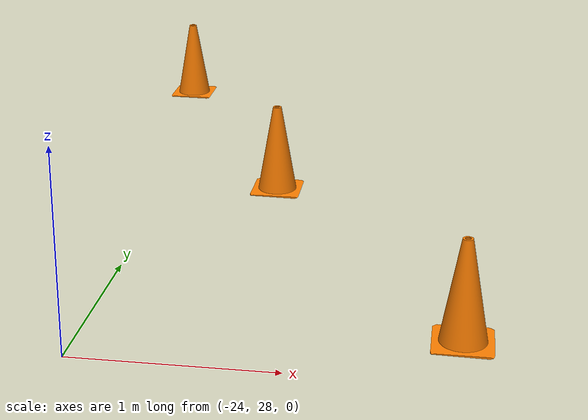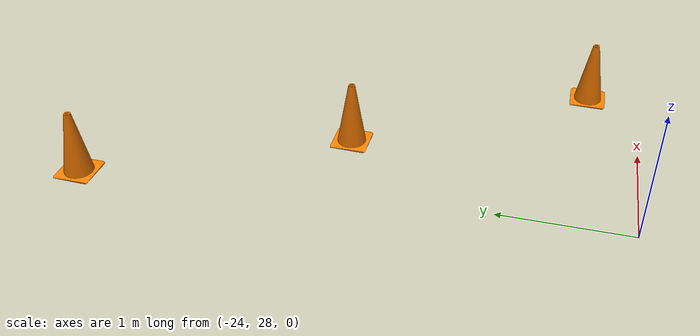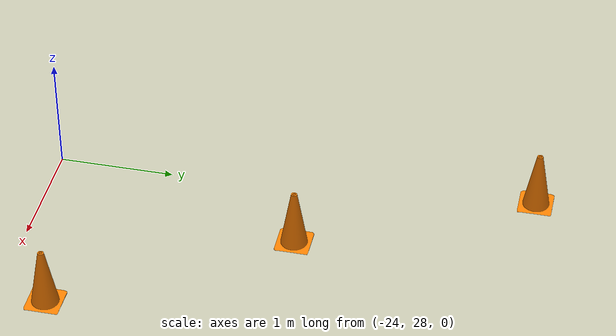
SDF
<sdf version="1.7">
 <world name="IARRC Urban">
  <model name="TallerCone_clone_88">
   <link name="link_0">
    <inertial>
     <mass>0.068</mass>
     <inertia>
      <ixx>0.000367263</ixx>
      <ixy>0</ixy>
      <ixz>0</ixz>
      <iyy>0.000367263</iyy>
      <iyz>0</iyz>
      <izz>0.000165927</izz>
     </inertia>
    </inertial>
    <visual name="visual">
     <geometry><mesh><uri>model://TallerCone/traffic_cone.stl</uri><scale>0.01 0.01 0.01</scale></mesh></geometry>
     <material>
      <lighting>1</lighting>
      <script><uri>file://media/materials/scripts/gazebo.material</uri><name>Gazebo/Grey</name></script>
      <ambient>0.4 0.2 0 1</ambient>
      <diffuse>1 0.5 0 1</diffuse>
      <specular>0.01 0.01 0.01 1</specular>
      <emissive>0 0 0 1</emissive>
     </material>
    </visual>
    <collision name="collision">
     <geometry><mesh><uri>model://TallerCone/traffic_cone.stl</uri></mesh></geometry>
     <surface>
      <friction>
       <ode><mu>1</mu><mu2>1</mu2><fdir1>0 0 0</fdir1><slip1>0</slip1><slip2>0</slip2></ode>
       <torsional>
        <coefficient>1</coefficient>
        <patch_radius>0</patch_radius>
        <surface_radius>0</surface_radius>
        <use_patch_radius>1</use_patch_radius>
        <ode><slip>0</slip></ode>
       </torsional>
      </friction>
      <bounce><restitution_coefficient>0</restitution_coefficient><threshold>1e+06</threshold></bounce>
      <contact>
       <collide_without_contact>0</collide_without_contact>
       <collide_without_contact_bitmask>1</collide_without_contact_bitmask>
       <collide_bitmask>1</collide_bitmask>
       <ode>
        <soft_cfm>0</soft_cfm>
        <soft_erp>0.2</soft_erp>
        <kp>1e+13</kp>
        <kd>1</kd>
        <max_vel>0.01</max_vel>
        <min_depth>0</min_depth>
       </ode>
       <bullet>
        <split_impulse>1</split_impulse>
        <split_impulse_penetration_threshold>-0.01</split_impulse_penetration_threshold>
        <soft_cfm>0</soft_cfm>
        <soft_erp>0.2</soft_erp>
        <kp>1e+13</kp>
        <kd>1</kd>
       </bullet>
      </contact>
     </surface>
    </collision>
   </link>
   <static>1</static>
   <pose>-22.2213 28.4098 -0.034283 0 -0 0</pose>
  </model>
  <model name="TallerCone_clone_89">
   <link name="link_0">
    <inertial>
     <mass>0.068</mass>
     <inertia>
      <ixx>0.000367263</ixx>
      <ixy>0</ixy>
      <ixz>0</ixz>
      <iyy>0.000367263</iyy>
      <iyz>0</iyz>
      <izz>0.000165927</izz>
     </inertia>
    </inertial>
    <visual name="visual">
     <geometry><mesh><uri>model://TallerCone/traffic_cone.stl</uri><scale>0.01 0.01 0.01</scale></mesh></geometry>
     <material>
      <lighting>1</lighting>
      <script><uri>file://media/materials/scripts/gazebo.material</uri><name>Gazebo/Grey</name></script>
      <ambient>0.4 0.2 0 1</ambient>
      <diffuse>1 0.5 0 1</diffuse>
      <specular>0.01 0.01 0.01 1</specular>
      <emissive>0 0 0 1</emissive>
     </material>
    </visual>
    <collision name="collision">
     <geometry><mesh><uri>model://TallerCone/traffic_cone.stl</uri></mesh></geometry>
     <surface>
      <friction>
       <ode><mu>1</mu><mu2>1</mu2><fdir1>0 0 0</fdir1><slip1>0</slip1><slip2>0</slip2></ode>
       <torsional>
        <coefficient>1</coefficient>
        <patch_radius>0</patch_radius>
        <surface_radius>0</surface_radius>
        <use_patch_radius>1</use_patch_radius>
        <ode><slip>0</slip></ode>
       </torsional>
      </friction>
      <bounce><restitution_coefficient>0</restitution_coefficient><threshold>1e+06</threshold></bounce>
      <contact>
       <collide_without_contact>0</collide_without_contact>
       <collide_without_contact_bitmask>1</collide_without_contact_bitmask>
       <collide_bitmask>1</collide_bitmask>
       <ode>
        <soft_cfm>0</soft_cfm>
        <soft_erp>0.2</soft_erp>
        <kp>1e+13</kp>
        <kd>1</kd>
        <max_vel>0.01</max_vel>
        <min_depth>0</min_depth>
       </ode>
       <bullet>
        <split_impulse>1</split_impulse>
        <split_impulse_penetration_threshold>-0.01</split_impulse_penetration_threshold>
        <soft_cfm>0</soft_cfm>
        <soft_erp>0.2</soft_erp>
        <kp>1e+13</kp>
        <kd>1</kd>
       </bullet>
      </contact>
     </surface>
    </collision>
   </link>
   <static>1</static>
   <pose>-23.3609 30.224 -0.034283 0 -0 0</pose>
  </model>
  <model name="TallerCone_clone_90">
   <link name="link_0">
    <inertial>
     <mass>0.068</mass>
     <inertia>
      <ixx>0.000367263</ixx>
      <ixy>0</ixy>
      <ixz>0</ixz>
      <iyy>0.000367263</iyy>
      <iyz>0</iyz>
      <izz>0.000165927</izz>
     </inertia>
    </inertial>
    <visual name="visual">
     <geometry><mesh><uri>model://TallerCone/traffic_cone.stl</uri><scale>0.01 0.01 0.01</scale></mesh></geometry>
     <material>
      <lighting>1</lighting>
      <script><uri>file://media/materials/scripts/gazebo.material</uri><name>Gazebo/Grey</name></script>
      <ambient>0.4 0.2 0 1</ambient>
      <diffuse>1 0.5 0 1</diffuse>
      <specular>0.01 0.01 0.01 1</specular>
      <emissive>0 0 0 1</emissive>
     </material>
    </visual>
    <collision name="collision">
     <geometry><mesh><uri>model://TallerCone/traffic_cone.stl</uri></mesh></geometry>
     <surface>
      <friction>
       <ode><mu>1</mu><mu2>1</mu2><fdir1>0 0 0</fdir1><slip1>0</slip1><slip2>0</slip2></ode>
       <torsional>
        <coefficient>1</coefficient>
        <patch_radius>0</patch_radius>
        <surface_radius>0</surface_radius>
        <use_patch_radius>1</use_patch_radius>
        <ode><slip>0</slip></ode>
       </torsional>
      </friction>
      <bounce><restitution_coefficient>0</restitution_coefficient><threshold>1e+06</threshold></bounce>
      <contact>
       <collide_without_contact>0</collide_without_contact>
       <collide_without_contact_bitmask>1</collide_without_contact_bitmask>
       <collide_bitmask>1</collide_bitmask>
       <ode>
        <soft_cfm>0</soft_cfm>
        <soft_erp>0.2</soft_erp>
        <kp>1e+13</kp>
        <kd>1</kd>
        <max_vel>0.01</max_vel>
        <min_depth>0</min_depth>
       </ode>
       <bullet>
        <split_impulse>1</split_impulse>
        <split_impulse_penetration_threshold>-0.01</split_impulse_penetration_threshold>
        <soft_cfm>0</soft_cfm>
        <soft_erp>0.2</soft_erp>
        <kp>1e+13</kp>
        <kd>1</kd>
       </bullet>
      </contact>
     </surface>
    </collision>
   </link>
   <static>1</static>
   <pose>-24.2869 32.1403 -0.034283 0 -0 0</pose>
  </model>
 </world>
</sdf>
